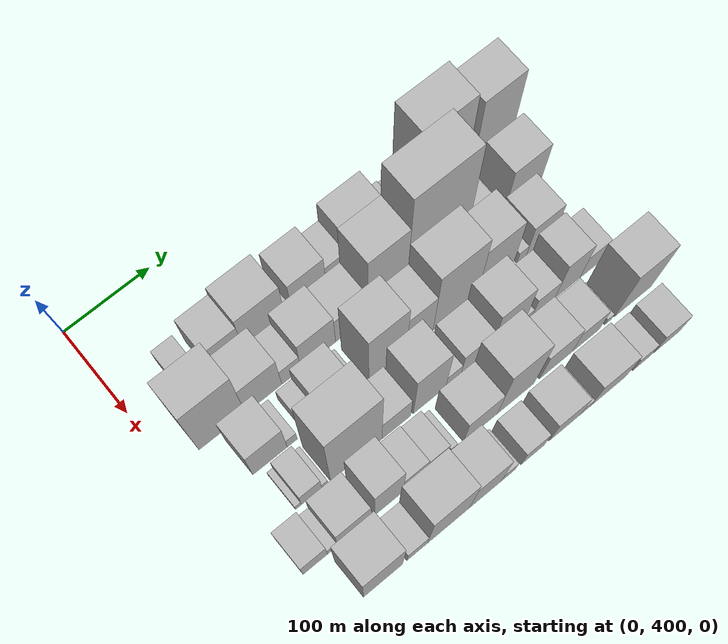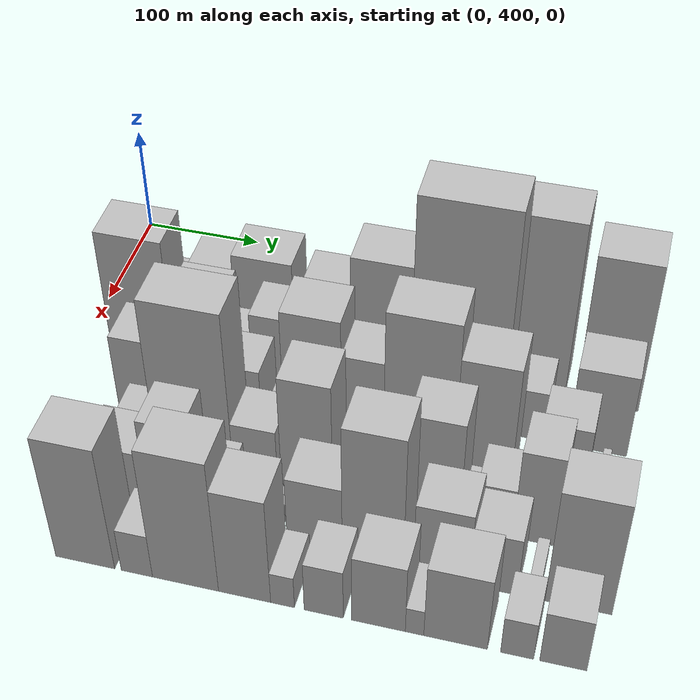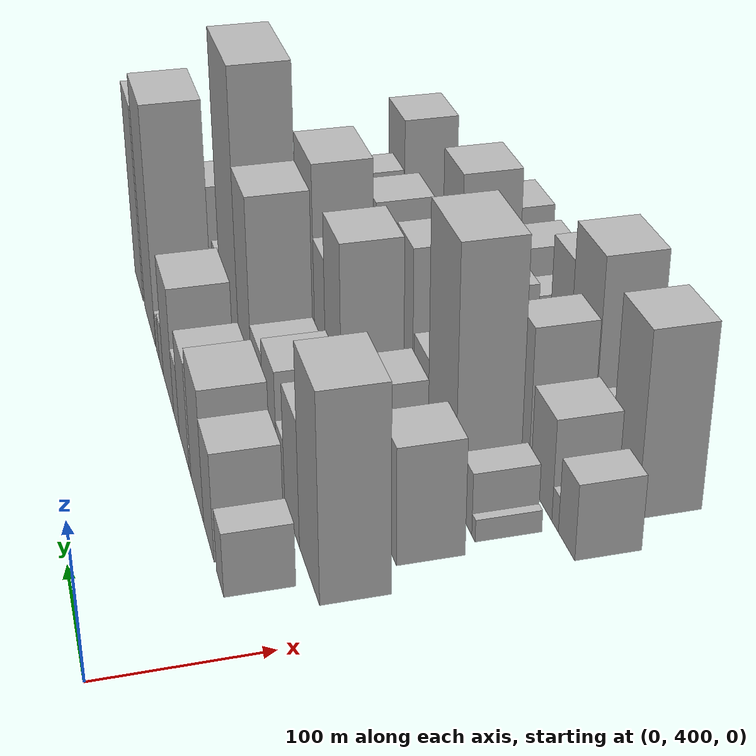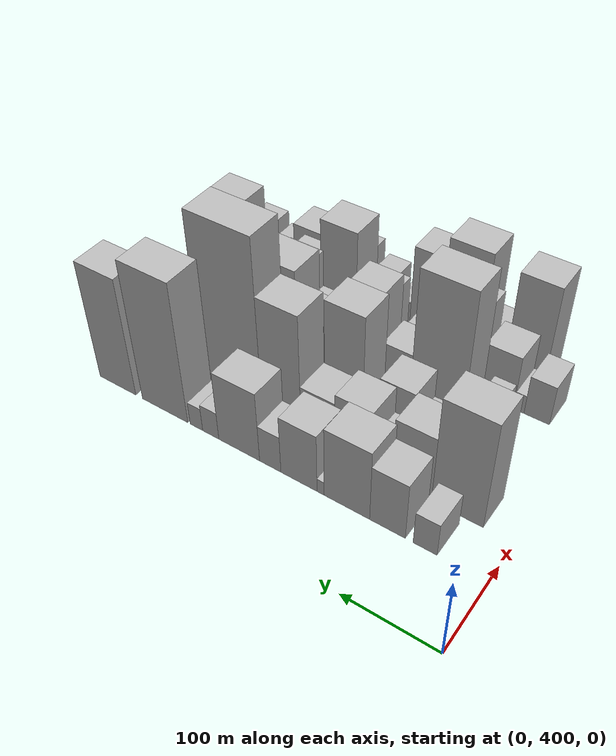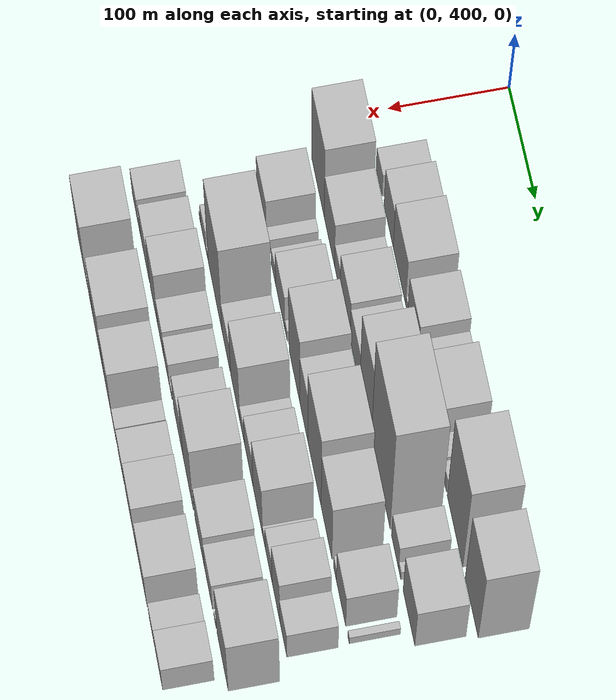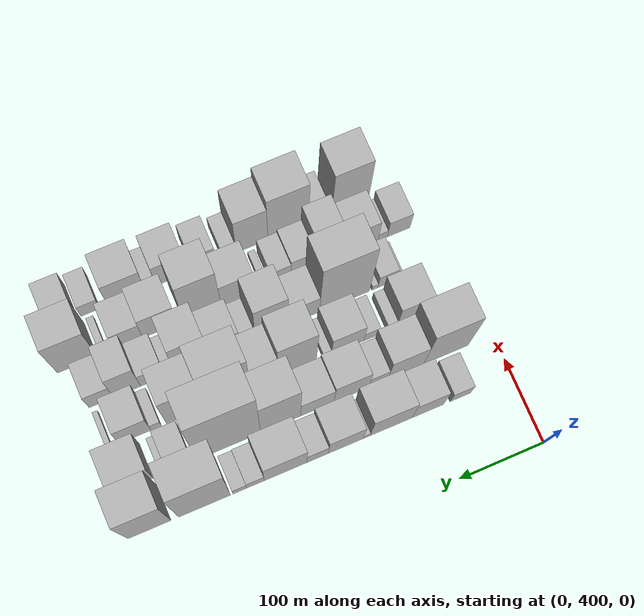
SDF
<sdf version="1.6">
 <world name="default">
  <model name="building_33">
   <static>1</static>
   <pose>100.0000 462.2350 0 0.000000 0.000000 0.000000</pose>
   <link name="link">
    <pose>0 0 21.00 0 0 0</pose>
    <collision name="collision"><geometry><box><size>40.0000 24.2474 42.0000</size></box></geometry></collision>
    <visual name="visual">
     <cast_shadows>0</cast_shadows>
     <geometry><box><size>40.0000 24.2474 42.0000</size></box></geometry>
     <material>
      <script>
       <uri>model://HANNAS_wall/materials/scripts</uri>
       <uri>model://HANNAS_wall/materials/textures</uri>
       <name>vrc/HANNAS_wall</name>
      </script>
     </material>
    </visual>
   </link>
  </model>
  <model name="building_34">
   <static>1</static>
   <pose>100.0000 501.0210 0 0.000000 0.000000 0.000000</pose>
   <link name="link">
    <pose>0 0 36.00 0 0 0</pose>
    <collision name="collision"><geometry><box><size>40.0000 37.3245 72.0000</size></box></geometry></collision>
    <visual name="visual">
     <cast_shadows>0</cast_shadows>
     <geometry><box><size>40.0000 37.3245 72.0000</size></box></geometry>
     <material>
      <script>
       <uri>model://HANNAS_wall/materials/scripts</uri>
       <uri>model://HANNAS_wall/materials/textures</uri>
       <name>vrc/HANNAS_wall</name>
      </script>
     </material>
    </visual>
   </link>
  </model>
  <model name="building_35">
   <static>1</static>
   <pose>100.0000 544.4039 0 0.000000 0.000000 0.000000</pose>
   <link name="link">
    <pose>0 0 45.00 0 0 0</pose>
    <collision name="collision"><geometry><box><size>40.0000 49.4412 90.0000</size></box></geometry></collision>
    <visual name="visual">
     <cast_shadows>0</cast_shadows>
     <geometry><box><size>40.0000 49.4412 90.0000</size></box></geometry>
     <material>
      <script>
       <uri>model://HANNAS_wall/materials/scripts</uri>
       <uri>model://HANNAS_wall/materials/textures</uri>
       <name>vrc/HANNAS_wall</name>
      </script>
     </material>
    </visual>
   </link>
  </model>
  <model name="building_36">
   <static>1</static>
   <pose>100.0000 573.1150 0 0.000000 0.000000 0.000000</pose>
   <link name="link">
    <pose>0 0 9.00 0 0 0</pose>
    <collision name="collision"><geometry><box><size>40.0000 7.9811 18.0000</size></box></geometry></collision>
    <visual name="visual">
     <cast_shadows>0</cast_shadows>
     <geometry><box><size>40.0000 7.9811 18.0000</size></box></geometry>
     <material>
      <script>
       <uri>model://HANNAS_wall/materials/scripts</uri>
       <uri>model://HANNAS_wall/materials/textures</uri>
       <name>vrc/HANNAS_wall</name>
      </script>
     </material>
    </visual>
   </link>
  </model>
  <model name="building_37">
   <static>1</static>
   <pose>100.0000 597.6989 0 0.000000 0.000000 0.000000</pose>
   <link name="link">
    <pose>0 0 37.50 0 0 0</pose>
    <collision name="collision"><geometry><box><size>40.0000 41.1868 75.0000</size></box></geometry></collision>
    <visual name="visual">
     <cast_shadows>0</cast_shadows>
     <geometry><box><size>40.0000 41.1868 75.0000</size></box></geometry>
     <material>
      <script>
       <uri>model://HANNAS_wall/materials/scripts</uri>
       <uri>model://HANNAS_wall/materials/textures</uri>
       <name>vrc/HANNAS_wall</name>
      </script>
     </material>
    </visual>
   </link>
  </model>
  <model name="building_38">
   <static>1</static>
   <pose>100.0000 630.7753 0 0.000000 0.000000 0.000000</pose>
   <link name="link">
    <pose>0 0 24.00 0 0 0</pose>
    <collision name="collision"><geometry><box><size>40.0000 24.9658 48.0000</size></box></geometry></collision>
    <visual name="visual">
     <cast_shadows>0</cast_shadows>
     <geometry><box><size>40.0000 24.9658 48.0000</size></box></geometry>
     <material>
      <script>
       <uri>model://HANNAS_wall/materials/scripts</uri>
       <uri>model://HANNAS_wall/materials/textures</uri>
       <name>vrc/HANNAS_wall</name>
      </script>
     </material>
    </visual>
   </link>
  </model>
  <model name="building_39">
   <static>1</static>
   <pose>100.0000 667.9489 0 0.000000 0.000000 0.000000</pose>
   <link name="link">
    <pose>0 0 45.00 0 0 0</pose>
    <collision name="collision"><geometry><box><size>40.0000 49.3814 90.0000</size></box></geometry></collision>
    <visual name="visual">
     <cast_shadows>0</cast_shadows>
     <geometry><box><size>40.0000 49.3814 90.0000</size></box></geometry>
     <material>
      <script>
       <uri>model://HANNAS_wall/materials/scripts</uri>
       <uri>model://HANNAS_wall/materials/textures</uri>
       <name>vrc/HANNAS_wall</name>
      </script>
     </material>
    </visual>
   </link>
  </model>
  <model name="building_40">
   <static>1</static>
   <pose>100.0000 702.7262 0 0.000000 0.000000 0.000000</pose>
   <link name="link">
    <pose>0 0 18.00 0 0 0</pose>
    <collision name="collision"><geometry><box><size>40.0000 20.1732 36.0000</size></box></geometry></collision>
    <visual name="visual">
     <cast_shadows>0</cast_shadows>
     <geometry><box><size>40.0000 20.1732 36.0000</size></box></geometry>
     <material>
      <script>
       <uri>model://HANNAS_wall/materials/scripts</uri>
       <uri>model://HANNAS_wall/materials/textures</uri>
       <name>vrc/HANNAS_wall</name>
      </script>
     </material>
    </visual>
   </link>
  </model>
  <model name="building_41">
   <static>1</static>
   <pose>100.0000 720.7292 0 0.000000 0.000000 0.000000</pose>
   <link name="link">
    <pose>0 0 15.00 0 0 0</pose>
    <collision name="collision"><geometry><box><size>40.0000 15.8327 30.0000</size></box></geometry></collision>
    <visual name="visual">
     <cast_shadows>0</cast_shadows>
     <geometry><box><size>40.0000 15.8327 30.0000</size></box></geometry>
     <material>
      <script>
       <uri>model://HANNAS_wall/materials/scripts</uri>
       <uri>model://HANNAS_wall/materials/textures</uri>
       <name>vrc/HANNAS_wall</name>
      </script>
     </material>
    </visual>
   </link>
  </model>
  <model name="building_42">
   <static>1</static>
   <pose>100.0000 761.2971 0 0.000000 0.000000 0.000000</pose>
   <link name="link">
    <pose>0 0 88.50 0 0 0</pose>
    <collision name="collision"><geometry><box><size>40.0000 59.3031 177.0000</size></box></geometry></collision>
    <visual name="visual">
     <cast_shadows>0</cast_shadows>
     <geometry><box><size>40.0000 59.3031 177.0000</size></box></geometry>
     <material>
      <script>
       <uri>model://HANNAS_wall/materials/scripts</uri>
       <uri>model://HANNAS_wall/materials/textures</uri>
       <name>vrc/HANNAS_wall</name>
      </script>
     </material>
    </visual>
   </link>
  </model>
  <model name="building_43">
   <static>1</static>
   <pose>100.0000 824.4423 0 0.000000 0.000000 0.000000</pose>
   <link name="link">
    <pose>0 0 75.00 0 0 0</pose>
    <collision name="collision"><geometry><box><size>40.0000 48.9874 150.0000</size></box></geometry></collision>
    <visual name="visual">
     <cast_shadows>0</cast_shadows>
     <geometry><box><size>40.0000 48.9874 150.0000</size></box></geometry>
     <material>
      <script>
       <uri>model://HANNAS_wall/materials/scripts</uri>
       <uri>model://HANNAS_wall/materials/textures</uri>
       <name>vrc/HANNAS_wall</name>
      </script>
     </material>
    </visual>
   </link>
  </model>
  <model name="building_78">
   <static>1</static>
   <pose>149.0000 457.1789 0 0.000000 0.000000 0.000000</pose>
   <link name="link">
    <pose>0 0 67.50 0 0 0</pose>
    <collision name="collision"><geometry><box><size>40.0000 53.3742 135.0000</size></box></geometry></collision>
    <visual name="visual">
     <cast_shadows>0</cast_shadows>
     <geometry><box><size>40.0000 53.3742 135.0000</size></box></geometry>
     <material>
      <script>
       <uri>model://HANNAS_wall/materials/scripts</uri>
       <uri>model://HANNAS_wall/materials/textures</uri>
       <name>vrc/HANNAS_wall</name>
      </script>
     </material>
    </visual>
   </link>
  </model>
  <model name="building_79">
   <static>1</static>
   <pose>149.0000 505.1072 0 0.000000 0.000000 0.000000</pose>
   <link name="link">
    <pose>0 0 42.00 0 0 0</pose>
    <collision name="collision"><geometry><box><size>40.0000 42.4824 84.0000</size></box></geometry></collision>
    <visual name="visual">
     <cast_shadows>0</cast_shadows>
     <geometry><box><size>40.0000 42.4824 84.0000</size></box></geometry>
     <material>
      <script>
       <uri>model://HANNAS_wall/materials/scripts</uri>
       <uri>model://HANNAS_wall/materials/textures</uri>
       <name>vrc/HANNAS_wall</name>
      </script>
     </material>
    </visual>
   </link>
  </model>
  <model name="building_80">
   <static>1</static>
   <pose>149.0000 537.6445 0 0.000000 0.000000 0.000000</pose>
   <link name="link">
    <pose>0 0 22.50 0 0 0</pose>
    <collision name="collision"><geometry><box><size>40.0000 22.5923 45.0000</size></box></geometry></collision>
    <visual name="visual">
     <cast_shadows>0</cast_shadows>
     <geometry><box><size>40.0000 22.5923 45.0000</size></box></geometry>
     <material>
      <script>
       <uri>model://HANNAS_wall/materials/scripts</uri>
       <uri>model://HANNAS_wall/materials/textures</uri>
       <name>vrc/HANNAS_wall</name>
      </script>
     </material>
    </visual>
   </link>
  </model>
  <model name="building_81">
   <static>1</static>
   <pose>149.0000 569.5184 0 0.000000 0.000000 0.000000</pose>
   <link name="link">
    <pose>0 0 39.00 0 0 0</pose>
    <collision name="collision"><geometry><box><size>40.0000 41.1555 78.0000</size></box></geometry></collision>
    <visual name="visual">
     <cast_shadows>0</cast_shadows>
     <geometry><box><size>40.0000 41.1555 78.0000</size></box></geometry>
     <material>
      <script>
       <uri>model://HANNAS_wall/materials/scripts</uri>
       <uri>model://HANNAS_wall/materials/textures</uri>
       <name>vrc/HANNAS_wall</name>
      </script>
     </material>
    </visual>
   </link>
  </model>
  <model name="building_82">
   <static>1</static>
   <pose>149.0000 609.7627 0 0.000000 0.000000 0.000000</pose>
   <link name="link">
    <pose>0 0 33.00 0 0 0</pose>
    <collision name="collision"><geometry><box><size>40.0000 39.3330 66.0000</size></box></geometry></collision>
    <visual name="visual">
     <cast_shadows>0</cast_shadows>
     <geometry><box><size>40.0000 39.3330 66.0000</size></box></geometry>
     <material>
      <script>
       <uri>model://HANNAS_wall/materials/scripts</uri>
       <uri>model://HANNAS_wall/materials/textures</uri>
       <name>vrc/HANNAS_wall</name>
      </script>
     </material>
    </visual>
   </link>
  </model>
  <model name="building_83">
   <static>1</static>
   <pose>149.0000 652.8227 0 0.000000 0.000000 0.000000</pose>
   <link name="link">
    <pose>0 0 76.50 0 0 0</pose>
    <collision name="collision"><geometry><box><size>40.0000 46.7869 153.0000</size></box></geometry></collision>
    <visual name="visual">
     <cast_shadows>0</cast_shadows>
     <geometry><box><size>40.0000 46.7869 153.0000</size></box></geometry>
     <material>
      <script>
       <uri>model://HANNAS_wall/materials/scripts</uri>
       <uri>model://HANNAS_wall/materials/textures</uri>
       <name>vrc/HANNAS_wall</name>
      </script>
     </material>
    </visual>
   </link>
  </model>
  <model name="building_84">
   <static>1</static>
   <pose>149.0000 713.1505 0 0.000000 0.000000 0.000000</pose>
   <link name="link">
    <pose>0 0 109.50 0 0 0</pose>
    <collision name="collision"><geometry><box><size>40.0000 73.8688 219.0000</size></box></geometry></collision>
    <visual name="visual">
     <cast_shadows>0</cast_shadows>
     <geometry><box><size>40.0000 73.8688 219.0000</size></box></geometry>
     <material>
      <script>
       <uri>model://HANNAS_wall/materials/scripts</uri>
       <uri>model://HANNAS_wall/materials/textures</uri>
       <name>vrc/HANNAS_wall</name>
      </script>
     </material>
    </visual>
   </link>
  </model>
  <model name="building_85">
   <static>1</static>
   <pose>149.0000 769.0644 0 0.000000 0.000000 0.000000</pose>
   <link name="link">
    <pose>0 0 25.50 0 0 0</pose>
    <collision name="collision"><geometry><box><size>40.0000 27.9590 51.0000</size></box></geometry></collision>
    <visual name="visual">
     <cast_shadows>0</cast_shadows>
     <geometry><box><size>40.0000 27.9590 51.0000</size></box></geometry>
     <material>
      <script>
       <uri>model://HANNAS_wall/materials/scripts</uri>
       <uri>model://HANNAS_wall/materials/textures</uri>
       <name>vrc/HANNAS_wall</name>
      </script>
     </material>
    </visual>
   </link>
  </model>
  <model name="building_86">
   <static>1</static>
   <pose>149.0000 787.3751 0 0.000000 0.000000 0.000000</pose>
   <link name="link">
    <pose>0 0 9.00 0 0 0</pose>
    <collision name="collision"><geometry><box><size>40.0000 8.6623 18.0000</size></box></geometry></collision>
    <visual name="visual">
     <cast_shadows>0</cast_shadows>
     <geometry><box><size>40.0000 8.6623 18.0000</size></box></geometry>
     <material>
      <script>
       <uri>model://HANNAS_wall/materials/scripts</uri>
       <uri>model://HANNAS_wall/materials/textures</uri>
       <name>vrc/HANNAS_wall</name>
      </script>
     </material>
    </visual>
   </link>
  </model>
  <model name="building_87">
   <static>1</static>
   <pose>149.0000 823.2641 0 0.000000 0.000000 0.000000</pose>
   <link name="link">
    <pose>0 0 42.00 0 0 0</pose>
    <collision name="collision"><geometry><box><size>40.0000 45.1156 84.0000</size></box></geometry></collision>
    <visual name="visual">
     <cast_shadows>0</cast_shadows>
     <geometry><box><size>40.0000 45.1156 84.0000</size></box></geometry>
     <material>
      <script>
       <uri>model://HANNAS_wall/materials/scripts</uri>
       <uri>model://HANNAS_wall/materials/textures</uri>
       <name>vrc/HANNAS_wall</name>
      </script>
     </material>
    </visual>
   </link>
  </model>
  <model name="building_120">
   <static>1</static>
   <pose>198.0000 474.0532 0 0.000000 0.000000 0.000000</pose>
   <link name="link">
    <pose>0 0 39.00 0 0 0</pose>
    <collision name="collision"><geometry><box><size>40.0000 39.5180 78.0000</size></box></geometry></collision>
    <visual name="visual">
     <cast_shadows>0</cast_shadows>
     <geometry><box><size>40.0000 39.5180 78.0000</size></box></geometry>
     <material>
      <script>
       <uri>model://HANNAS_wall/materials/scripts</uri>
       <uri>model://HANNAS_wall/materials/textures</uri>
       <name>vrc/HANNAS_wall</name>
      </script>
     </material>
    </visual>
   </link>
  </model>
  <model name="building_121">
   <static>1</static>
   <pose>198.0000 499.7464 0 0.000000 0.000000 0.000000</pose>
   <link name="link">
    <pose>0 0 13.50 0 0 0</pose>
    <collision name="collision"><geometry><box><size>40.0000 11.8683 27.0000</size></box></geometry></collision>
    <visual name="visual">
     <cast_shadows>0</cast_shadows>
     <geometry><box><size>40.0000 11.8683 27.0000</size></box></geometry>
     <material>
      <script>
       <uri>model://HANNAS_wall/materials/scripts</uri>
       <uri>model://HANNAS_wall/materials/textures</uri>
       <name>vrc/HANNAS_wall</name>
      </script>
     </material>
    </visual>
   </link>
  </model>
  <model name="building_122">
   <static>1</static>
   <pose>198.0000 523.9168 0 0.000000 0.000000 0.000000</pose>
   <link name="link">
    <pose>0 0 16.50 0 0 0</pose>
    <collision name="collision"><geometry><box><size>40.0000 18.4725 33.0000</size></box></geometry></collision>
    <visual name="visual">
     <cast_shadows>0</cast_shadows>
     <geometry><box><size>40.0000 18.4725 33.0000</size></box></geometry>
     <material>
      <script>
       <uri>model://HANNAS_wall/materials/scripts</uri>
       <uri>model://HANNAS_wall/materials/textures</uri>
       <name>vrc/HANNAS_wall</name>
      </script>
     </material>
    </visual>
   </link>
  </model>
  <model name="building_123">
   <static>1</static>
   <pose>198.0000 552.5294 0 0.000000 0.000000 0.000000</pose>
   <link name="link">
    <pose>0 0 34.50 0 0 0</pose>
    <collision name="collision"><geometry><box><size>40.0000 38.7527 69.0000</size></box></geometry></collision>
    <visual name="visual">
     <cast_shadows>0</cast_shadows>
     <geometry><box><size>40.0000 38.7527 69.0000</size></box></geometry>
     <material>
      <script>
       <uri>model://HANNAS_wall/materials/scripts</uri>
       <uri>model://HANNAS_wall/materials/textures</uri>
       <name>vrc/HANNAS_wall</name>
      </script>
     </material>
    </visual>
   </link>
  </model>
  <model name="building_124">
   <static>1</static>
   <pose>198.0000 576.8698 0 0.000000 0.000000 0.000000</pose>
   <link name="link">
    <pose>0 0 10.50 0 0 0</pose>
    <collision name="collision"><geometry><box><size>40.0000 9.9280 21.0000</size></box></geometry></collision>
    <visual name="visual">
     <cast_shadows>0</cast_shadows>
     <geometry><box><size>40.0000 9.9280 21.0000</size></box></geometry>
     <material>
      <script>
       <uri>model://HANNAS_wall/materials/scripts</uri>
       <uri>model://HANNAS_wall/materials/textures</uri>
       <name>vrc/HANNAS_wall</name>
      </script>
     </material>
    </visual>
   </link>
  </model>
  <model name="building_125">
   <static>1</static>
   <pose>198.0000 612.4078 0 0.000000 0.000000 0.000000</pose>
   <link name="link">
    <pose>0 0 67.50 0 0 0</pose>
    <collision name="collision"><geometry><box><size>40.0000 45.1480 135.0000</size></box></geometry></collision>
    <visual name="visual">
     <cast_shadows>0</cast_shadows>
     <geometry><box><size>40.0000 45.1480 135.0000</size></box></geometry>
     <material>
      <script>
       <uri>model://HANNAS_wall/materials/scripts</uri>
       <uri>model://HANNAS_wall/materials/textures</uri>
       <name>vrc/HANNAS_wall</name>
      </script>
     </material>
    </visual>
   </link>
  </model>
  <model name="building_126">
   <static>1</static>
   <pose>198.0000 651.1592 0 0.000000 0.000000 0.000000</pose>
   <link name="link">
    <pose>0 0 51.00 0 0 0</pose>
    <collision name="collision"><geometry><box><size>40.0000 32.3549 102.0000</size></box></geometry></collision>
    <visual name="visual">
     <cast_shadows>0</cast_shadows>
     <geometry><box><size>40.0000 32.3549 102.0000</size></box></geometry>
     <material>
      <script>
       <uri>model://HANNAS_wall/materials/scripts</uri>
       <uri>model://HANNAS_wall/materials/textures</uri>
       <name>vrc/HANNAS_wall</name>
      </script>
     </material>
    </visual>
   </link>
  </model>
  <model name="building_127">
   <static>1</static>
   <pose>198.0000 694.6096 0 0.000000 0.000000 0.000000</pose>
   <link name="link">
    <pose>0 0 76.50 0 0 0</pose>
    <collision name="collision"><geometry><box><size>40.0000 54.5460 153.0000</size></box></geometry></collision>
    <visual name="visual">
     <cast_shadows>0</cast_shadows>
     <geometry><box><size>40.0000 54.5460 153.0000</size></box></geometry>
     <material>
      <script>
       <uri>model://HANNAS_wall/materials/scripts</uri>
       <uri>model://HANNAS_wall/materials/textures</uri>
       <name>vrc/HANNAS_wall</name>
      </script>
     </material>
    </visual>
   </link>
  </model>
  <model name="building_128">
   <static>1</static>
   <pose>198.0000 743.6714 0 0.000000 0.000000 0.000000</pose>
   <link name="link">
    <pose>0 0 60.00 0 0 0</pose>
    <collision name="collision"><geometry><box><size>40.0000 43.5775 120.0000</size></box></geometry></collision>
    <visual name="visual">
     <cast_shadows>0</cast_shadows>
     <geometry><box><size>40.0000 43.5775 120.0000</size></box></geometry>
     <material>
      <script>
       <uri>model://HANNAS_wall/materials/scripts</uri>
       <uri>model://HANNAS_wall/materials/textures</uri>
       <name>vrc/HANNAS_wall</name>
      </script>
     </material>
    </visual>
   </link>
  </model>
  <model name="building_129">
   <static>1</static>
   <pose>198.0000 777.4363 0 0.000000 0.000000 0.000000</pose>
   <link name="link">
    <pose>0 0 13.50 0 0 0</pose>
    <collision name="collision"><geometry><box><size>40.0000 11.9522 27.0000</size></box></geometry></collision>
    <visual name="visual">
     <cast_shadows>0</cast_shadows>
     <geometry><box><size>40.0000 11.9522 27.0000</size></box></geometry>
     <material>
      <script>
       <uri>model://HANNAS_wall/materials/scripts</uri>
       <uri>model://HANNAS_wall/materials/textures</uri>
       <name>vrc/HANNAS_wall</name>
      </script>
     </material>
    </visual>
   </link>
  </model>
  <model name="building_130">
   <static>1</static>
   <pose>198.0000 801.9048 0 0.000000 0.000000 0.000000</pose>
   <link name="link">
    <pose>0 0 36.00 0 0 0</pose>
    <collision name="collision"><geometry><box><size>40.0000 36.9848 72.0000</size></box></geometry></collision>
    <visual name="visual">
     <cast_shadows>0</cast_shadows>
     <geometry><box><size>40.0000 36.9848 72.0000</size></box></geometry>
     <material>
      <script>
       <uri>model://HANNAS_wall/materials/scripts</uri>
       <uri>model://HANNAS_wall/materials/textures</uri>
       <name>vrc/HANNAS_wall</name>
      </script>
     </material>
    </visual>
   </link>
  </model>
  <model name="building_131">
   <static>1</static>
   <pose>198.0000 831.4427 0 0.000000 0.000000 0.000000</pose>
   <link name="link">
    <pose>0 0 7.50 0 0 0</pose>
    <collision name="collision"><geometry><box><size>40.0000 6.0911 15.0000</size></box></geometry></collision>
    <visual name="visual">
     <cast_shadows>0</cast_shadows>
     <geometry><box><size>40.0000 6.0911 15.0000</size></box></geometry>
     <material>
      <script>
       <uri>model://HANNAS_wall/materials/scripts</uri>
       <uri>model://HANNAS_wall/materials/textures</uri>
       <name>vrc/HANNAS_wall</name>
      </script>
     </material>
    </visual>
   </link>
  </model>
  <model name="building_169">
   <static>1</static>
   <pose>247.0000 467.9238 0 0.000000 0.000000 0.000000</pose>
   <link name="link">
    <pose>0 0 7.50 0 0 0</pose>
    <collision name="collision"><geometry><box><size>40.0000 6.6607 15.0000</size></box></geometry></collision>
    <visual name="visual">
     <cast_shadows>0</cast_shadows>
     <geometry><box><size>40.0000 6.6607 15.0000</size></box></geometry>
     <material>
      <script>
       <uri>model://HANNAS_wall/materials/scripts</uri>
       <uri>model://HANNAS_wall/materials/textures</uri>
       <name>vrc/HANNAS_wall</name>
      </script>
     </material>
    </visual>
   </link>
  </model>
  <model name="building_170">
   <static>1</static>
   <pose>247.0000 482.9997 0 0.000000 0.000000 0.000000</pose>
   <link name="link">
    <pose>0 0 21.00 0 0 0</pose>
    <collision name="collision"><geometry><box><size>40.0000 23.4911 42.0000</size></box></geometry></collision>
    <visual name="visual">
     <cast_shadows>0</cast_shadows>
     <geometry><box><size>40.0000 23.4911 42.0000</size></box></geometry>
     <material>
      <script>
       <uri>model://HANNAS_wall/materials/scripts</uri>
       <uri>model://HANNAS_wall/materials/textures</uri>
       <name>vrc/HANNAS_wall</name>
      </script>
     </material>
    </visual>
   </link>
  </model>
  <model name="building_171">
   <static>1</static>
   <pose>247.0000 498.2959 0 0.000000 0.000000 0.000000</pose>
   <link name="link">
    <pose>0 0 7.50 0 0 0</pose>
    <collision name="collision"><geometry><box><size>40.0000 7.1013 15.0000</size></box></geometry></collision>
    <visual name="visual">
     <cast_shadows>0</cast_shadows>
     <geometry><box><size>40.0000 7.1013 15.0000</size></box></geometry>
     <material>
      <script>
       <uri>model://HANNAS_wall/materials/scripts</uri>
       <uri>model://HANNAS_wall/materials/textures</uri>
       <name>vrc/HANNAS_wall</name>
      </script>
     </material>
    </visual>
   </link>
  </model>
  <model name="building_172">
   <static>1</static>
   <pose>247.0000 534.8692 0 0.000000 0.000000 0.000000</pose>
   <link name="link">
    <pose>0 0 85.50 0 0 0</pose>
    <collision name="collision"><geometry><box><size>40.0000 60.0453 171.0000</size></box></geometry></collision>
    <visual name="visual">
     <cast_shadows>0</cast_shadows>
     <geometry><box><size>40.0000 60.0453 171.0000</size></box></geometry>
     <material>
      <script>
       <uri>model://HANNAS_wall/materials/scripts</uri>
       <uri>model://HANNAS_wall/materials/textures</uri>
       <name>vrc/HANNAS_wall</name>
      </script>
     </material>
    </visual>
   </link>
  </model>
  <model name="building_173">
   <static>1</static>
   <pose>247.0000 581.9582 0 0.000000 0.000000 0.000000</pose>
   <link name="link">
    <pose>0 0 31.50 0 0 0</pose>
    <collision name="collision"><geometry><box><size>40.0000 34.1327 63.0000</size></box></geometry></collision>
    <visual name="visual">
     <cast_shadows>0</cast_shadows>
     <geometry><box><size>40.0000 34.1327 63.0000</size></box></geometry>
     <material>
      <script>
       <uri>model://HANNAS_wall/materials/scripts</uri>
       <uri>model://HANNAS_wall/materials/textures</uri>
       <name>vrc/HANNAS_wall</name>
      </script>
     </material>
    </visual>
   </link>
  </model>
  <model name="building_174">
   <static>1</static>
   <pose>247.0000 621.5283 0 0.000000 0.000000 0.000000</pose>
   <link name="link">
    <pose>0 0 60.00 0 0 0</pose>
    <collision name="collision"><geometry><box><size>40.0000 39.0076 120.0000</size></box></geometry></collision>
    <visual name="visual">
     <cast_shadows>0</cast_shadows>
     <geometry><box><size>40.0000 39.0076 120.0000</size></box></geometry>
     <material>
      <script>
       <uri>model://HANNAS_wall/materials/scripts</uri>
       <uri>model://HANNAS_wall/materials/textures</uri>
       <name>vrc/HANNAS_wall</name>
      </script>
     </material>
    </visual>
   </link>
  </model>
  <model name="building_175">
   <static>1</static>
   <pose>247.0000 650.1724 0 0.000000 0.000000 0.000000</pose>
   <link name="link">
    <pose>0 0 18.00 0 0 0</pose>
    <collision name="collision"><geometry><box><size>40.0000 18.2806 36.0000</size></box></geometry></collision>
    <visual name="visual">
     <cast_shadows>0</cast_shadows>
     <geometry><box><size>40.0000 18.2806 36.0000</size></box></geometry>
     <material>
      <script>
       <uri>model://HANNAS_wall/materials/scripts</uri>
       <uri>model://HANNAS_wall/materials/textures</uri>
       <name>vrc/HANNAS_wall</name>
      </script>
     </material>
    </visual>
   </link>
  </model>
  <model name="building_176">
   <static>1</static>
   <pose>247.0000 677.8044 0 0.000000 0.000000 0.000000</pose>
   <link name="link">
    <pose>0 0 31.50 0 0 0</pose>
    <collision name="collision"><geometry><box><size>40.0000 36.9833 63.0000</size></box></geometry></collision>
    <visual name="visual">
     <cast_shadows>0</cast_shadows>
     <geometry><box><size>40.0000 36.9833 63.0000</size></box></geometry>
     <material>
      <script>
       <uri>model://HANNAS_wall/materials/scripts</uri>
       <uri>model://HANNAS_wall/materials/textures</uri>
       <name>vrc/HANNAS_wall</name>
      </script>
     </material>
    </visual>
   </link>
  </model>
  <model name="building_177">
   <static>1</static>
   <pose>247.0000 716.3649 0 0.000000 0.000000 0.000000</pose>
   <link name="link">
    <pose>0 0 54.00 0 0 0</pose>
    <collision name="collision"><geometry><box><size>40.0000 40.1377 108.0000</size></box></geometry></collision>
    <visual name="visual">
     <cast_shadows>0</cast_shadows>
     <geometry><box><size>40.0000 40.1377 108.0000</size></box></geometry>
     <material>
      <script>
       <uri>model://HANNAS_wall/materials/scripts</uri>
       <uri>model://HANNAS_wall/materials/textures</uri>
       <name>vrc/HANNAS_wall</name>
      </script>
     </material>
    </visual>
   </link>
  </model>
  <model name="building_178">
   <static>1</static>
   <pose>247.0000 741.8140 0 0.000000 0.000000 0.000000</pose>
   <link name="link">
    <pose>0 0 12.00 0 0 0</pose>
    <collision name="collision"><geometry><box><size>40.0000 10.7604 24.0000</size></box></geometry></collision>
    <visual name="visual">
     <cast_shadows>0</cast_shadows>
     <geometry><box><size>40.0000 10.7604 24.0000</size></box></geometry>
     <material>
      <script>
       <uri>model://HANNAS_wall/materials/scripts</uri>
       <uri>model://HANNAS_wall/materials/textures</uri>
       <name>vrc/HANNAS_wall</name>
      </script>
     </material>
    </visual>
   </link>
  </model>
  <model name="building_179">
   <static>1</static>
   <pose>247.0000 761.4482 0 0.000000 0.000000 0.000000</pose>
   <link name="link">
    <pose>0 0 25.50 0 0 0</pose>
    <collision name="collision"><geometry><box><size>40.0000 28.5081 51.0000</size></box></geometry></collision>
    <visual name="visual">
     <cast_shadows>0</cast_shadows>
     <geometry><box><size>40.0000 28.5081 51.0000</size></box></geometry>
     <material>
      <script>
       <uri>model://HANNAS_wall/materials/scripts</uri>
       <uri>model://HANNAS_wall/materials/textures</uri>
       <name>vrc/HANNAS_wall</name>
      </script>
     </material>
    </visual>
   </link>
  </model>
  <model name="building_180">
   <static>1</static>
   <pose>247.0000 791.4856 0 0.000000 0.000000 0.000000</pose>
   <link name="link">
    <pose>0 0 46.50 0 0 0</pose>
    <collision name="collision"><geometry><box><size>40.0000 31.5667 93.0000</size></box></geometry></collision>
    <visual name="visual">
     <cast_shadows>0</cast_shadows>
     <geometry><box><size>40.0000 31.5667 93.0000</size></box></geometry>
     <material>
      <script>
       <uri>model://HANNAS_wall/materials/scripts</uri>
       <uri>model://HANNAS_wall/materials/textures</uri>
       <name>vrc/HANNAS_wall</name>
      </script>
     </material>
    </visual>
   </link>
  </model>
  <model name="building_181">
   <static>1</static>
   <pose>247.0000 821.5796 0 0.000000 0.000000 0.000000</pose>
   <link name="link">
    <pose>0 0 28.50 0 0 0</pose>
    <collision name="collision"><geometry><box><size>40.0000 28.6212 57.0000</size></box></geometry></collision>
    <visual name="visual">
     <cast_shadows>0</cast_shadows>
     <geometry><box><size>40.0000 28.6212 57.0000</size></box></geometry>
     <material>
      <script>
       <uri>model://HANNAS_wall/materials/scripts</uri>
       <uri>model://HANNAS_wall/materials/textures</uri>
       <name>vrc/HANNAS_wall</name>
      </script>
     </material>
    </visual>
   </link>
  </model>
  <model name="building_218">
   <static>1</static>
   <pose>296.0000 447.9279 0 0.000000 0.000000 0.000000</pose>
   <link name="link">
    <pose>0 0 25.50 0 0 0</pose>
    <collision name="collision"><geometry><box><size>40.0000 27.6254 51.0000</size></box></geometry></collision>
    <visual name="visual">
     <cast_shadows>0</cast_shadows>
     <geometry><box><size>40.0000 27.6254 51.0000</size></box></geometry>
     <material>
      <script>
       <uri>model://HANNAS_wall/materials/scripts</uri>
       <uri>model://HANNAS_wall/materials/textures</uri>
       <name>vrc/HANNAS_wall</name>
      </script>
     </material>
    </visual>
   </link>
  </model>
  <model name="building_219">
   <static>1</static>
   <pose>296.0000 467.4357 0 0.000000 0.000000 0.000000</pose>
   <link name="link">
    <pose>0 0 12.00 0 0 0</pose>
    <collision name="collision"><geometry><box><size>40.0000 11.3902 24.0000</size></box></geometry></collision>
    <visual name="visual">
     <cast_shadows>0</cast_shadows>
     <geometry><box><size>40.0000 11.3902 24.0000</size></box></geometry>
     <material>
      <script>
       <uri>model://HANNAS_wall/materials/scripts</uri>
       <uri>model://HANNAS_wall/materials/textures</uri>
       <name>vrc/HANNAS_wall</name>
      </script>
     </material>
    </visual>
   </link>
  </model>
  <model name="building_220">
   <static>1</static>
   <pose>296.0000 492.4781 0 0.000000 0.000000 0.000000</pose>
   <link name="link">
    <pose>0 0 34.50 0 0 0</pose>
    <collision name="collision"><geometry><box><size>40.0000 38.6945 69.0000</size></box></geometry></collision>
    <visual name="visual">
     <cast_shadows>0</cast_shadows>
     <geometry><box><size>40.0000 38.6945 69.0000</size></box></geometry>
     <material>
      <script>
       <uri>model://HANNAS_wall/materials/scripts</uri>
       <uri>model://HANNAS_wall/materials/textures</uri>
       <name>vrc/HANNAS_wall</name>
      </script>
     </material>
    </visual>
   </link>
  </model>
  <model name="building_221">
   <static>1</static>
   <pose>296.0000 532.4503 0 0.000000 0.000000 0.000000</pose>
   <link name="link">
    <pose>0 0 52.50 0 0 0</pose>
    <collision name="collision"><geometry><box><size>40.0000 33.2500 105.0000</size></box></geometry></collision>
    <visual name="visual">
     <cast_shadows>0</cast_shadows>
     <geometry><box><size>40.0000 33.2500 105.0000</size></box></geometry>
     <material>
      <script>
       <uri>model://HANNAS_wall/materials/scripts</uri>
       <uri>model://HANNAS_wall/materials/textures</uri>
       <name>vrc/HANNAS_wall</name>
      </script>
     </material>
    </visual>
   </link>
  </model>
  <model name="building_222">
   <static>1</static>
   <pose>296.0000 563.3449 0 0.000000 0.000000 0.000000</pose>
   <link name="link">
    <pose>0 0 28.50 0 0 0</pose>
    <collision name="collision"><geometry><box><size>40.0000 28.5392 57.0000</size></box></geometry></collision>
    <visual name="visual">
     <cast_shadows>0</cast_shadows>
     <geometry><box><size>40.0000 28.5392 57.0000</size></box></geometry>
     <material>
      <script>
       <uri>model://HANNAS_wall/materials/scripts</uri>
       <uri>model://HANNAS_wall/materials/textures</uri>
       <name>vrc/HANNAS_wall</name>
      </script>
     </material>
    </visual>
   </link>
  </model>
  <model name="building_223">
   <static>1</static>
   <pose>296.0000 589.6479 0 0.000000 0.000000 0.000000</pose>
   <link name="link">
    <pose>0 0 24.00 0 0 0</pose>
    <collision name="collision"><geometry><box><size>40.0000 24.0668 48.0000</size></box></geometry></collision>
    <visual name="visual">
     <cast_shadows>0</cast_shadows>
     <geometry><box><size>40.0000 24.0668 48.0000</size></box></geometry>
     <material>
      <script>
       <uri>model://HANNAS_wall/materials/scripts</uri>
       <uri>model://HANNAS_wall/materials/textures</uri>
       <name>vrc/HANNAS_wall</name>
      </script>
     </material>
    </visual>
   </link>
  </model>
  <model name="building_224">
   <static>1</static>
   <pose>296.0000 608.6778 0 0.000000 0.000000 0.000000</pose>
   <link name="link">
    <pose>0 0 9.00 0 0 0</pose>
    <collision name="collision"><geometry><box><size>40.0000 7.9929 18.0000</size></box></geometry></collision>
    <visual name="visual">
     <cast_shadows>0</cast_shadows>
     <geometry><box><size>40.0000 7.9929 18.0000</size></box></geometry>
     <material>
      <script>
       <uri>model://HANNAS_wall/materials/scripts</uri>
       <uri>model://HANNAS_wall/materials/textures</uri>
       <name>vrc/HANNAS_wall</name>
      </script>
     </material>
    </visual>
   </link>
  </model>
  <model name="building_225">
   <static>1</static>
   <pose>296.0000 641.0123 0 0.000000 0.000000 0.000000</pose>
   <link name="link">
    <pose>0 0 37.50 0 0 0</pose>
    <collision name="collision"><geometry><box><size>40.0000 40.6762 75.0000</size></box></geometry></collision>
    <visual name="visual">
     <cast_shadows>0</cast_shadows>
     <geometry><box><size>40.0000 40.6762 75.0000</size></box></geometry>
     <material>
      <script>
       <uri>model://HANNAS_wall/materials/scripts</uri>
       <uri>model://HANNAS_wall/materials/textures</uri>
       <name>vrc/HANNAS_wall</name>
      </script>
     </material>
    </visual>
   </link>
  </model>
  <model name="building_226">
   <static>1</static>
   <pose>296.0000 683.6834 0 0.000000 0.000000 0.000000</pose>
   <link name="link">
    <pose>0 0 69.00 0 0 0</pose>
    <collision name="collision"><geometry><box><size>40.0000 44.6662 138.0000</size></box></geometry></collision>
    <visual name="visual">
     <cast_shadows>0</cast_shadows>
     <geometry><box><size>40.0000 44.6662 138.0000</size></box></geometry>
     <material>
      <script>
       <uri>model://HANNAS_wall/materials/scripts</uri>
       <uri>model://HANNAS_wall/materials/textures</uri>
       <name>vrc/HANNAS_wall</name>
      </script>
     </material>
    </visual>
   </link>
  </model>
  <model name="building_227">
   <static>1</static>
   <pose>296.0000 733.3504 0 0.000000 0.000000 0.000000</pose>
   <link name="link">
    <pose>0 0 37.50 0 0 0</pose>
    <collision name="collision"><geometry><box><size>40.0000 40.6678 75.0000</size></box></geometry></collision>
    <visual name="visual">
     <cast_shadows>0</cast_shadows>
     <geometry><box><size>40.0000 40.6678 75.0000</size></box></geometry>
     <material>
      <script>
       <uri>model://HANNAS_wall/materials/scripts</uri>
       <uri>model://HANNAS_wall/materials/textures</uri>
       <name>vrc/HANNAS_wall</name>
      </script>
     </material>
    </visual>
   </link>
  </model>
  <model name="building_228">
   <static>1</static>
   <pose>296.0000 770.6549 0 0.000000 0.000000 0.000000</pose>
   <link name="link">
    <pose>0 0 30.00 0 0 0</pose>
    <collision name="collision"><geometry><box><size>40.0000 33.9411 60.0000</size></box></geometry></collision>
    <visual name="visual">
     <cast_shadows>0</cast_shadows>
     <geometry><box><size>40.0000 33.9411 60.0000</size></box></geometry>
     <material>
      <script>
       <uri>model://HANNAS_wall/materials/scripts</uri>
       <uri>model://HANNAS_wall/materials/textures</uri>
       <name>vrc/HANNAS_wall</name>
      </script>
     </material>
    </visual>
   </link>
  </model>
  <model name="building_229">
   <static>1</static>
   <pose>296.0000 798.8704 0 0.000000 0.000000 0.000000</pose>
   <link name="link">
    <pose>0 0 9.00 0 0 0</pose>
    <collision name="collision"><geometry><box><size>40.0000 8.4899 18.0000</size></box></geometry></collision>
    <visual name="visual">
     <cast_shadows>0</cast_shadows>
     <geometry><box><size>40.0000 8.4899 18.0000</size></box></geometry>
     <material>
      <script>
       <uri>model://HANNAS_wall/materials/scripts</uri>
       <uri>model://HANNAS_wall/materials/textures</uri>
       <name>vrc/HANNAS_wall</name>
      </script>
     </material>
    </visual>
   </link>
  </model>
  <model name="building_230">
   <static>1</static>
   <pose>296.0000 830.4220 0 0.000000 0.000000 0.000000</pose>
   <link name="link">
    <pose>0 0 58.50 0 0 0</pose>
    <collision name="collision"><geometry><box><size>40.0000 46.6134 117.0000</size></box></geometry></collision>
    <visual name="visual">
     <cast_shadows>0</cast_shadows>
     <geometry><box><size>40.0000 46.6134 117.0000</size></box></geometry>
     <material>
      <script>
       <uri>model://HANNAS_wall/materials/scripts</uri>
       <uri>model://HANNAS_wall/materials/textures</uri>
       <name>vrc/HANNAS_wall</name>
      </script>
     </material>
    </visual>
   </link>
  </model>
  <model name="building_270">
   <static>1</static>
   <pose>345.0000 485.1893 0 0.000000 0.000000 0.000000</pose>
   <link name="link">
    <pose>0 0 63.00 0 0 0</pose>
    <collision name="collision"><geometry><box><size>40.0000 44.7342 126.0000</size></box></geometry></collision>
    <visual name="visual">
     <cast_shadows>0</cast_shadows>
     <geometry><box><size>40.0000 44.7342 126.0000</size></box></geometry>
     <material>
      <script>
       <uri>model://HANNAS_wall/materials/scripts</uri>
       <uri>model://HANNAS_wall/materials/textures</uri>
       <name>vrc/HANNAS_wall</name>
      </script>
     </material>
    </visual>
   </link>
  </model>
  <model name="building_271">
   <static>1</static>
   <pose>345.0000 524.2781 0 0.000000 0.000000 0.000000</pose>
   <link name="link">
    <pose>0 0 22.50 0 0 0</pose>
    <collision name="collision"><geometry><box><size>40.0000 23.4435 45.0000</size></box></geometry></collision>
    <visual name="visual">
     <cast_shadows>0</cast_shadows>
     <geometry><box><size>40.0000 23.4435 45.0000</size></box></geometry>
     <material>
      <script>
       <uri>model://HANNAS_wall/materials/scripts</uri>
       <uri>model://HANNAS_wall/materials/textures</uri>
       <name>vrc/HANNAS_wall</name>
      </script>
     </material>
    </visual>
   </link>
  </model>
  <model name="building_272">
   <static>1</static>
   <pose>345.0000 560.4594 0 0.000000 0.000000 0.000000</pose>
   <link name="link">
    <pose>0 0 67.50 0 0 0</pose>
    <collision name="collision"><geometry><box><size>40.0000 48.9190 135.0000</size></box></geometry></collision>
    <visual name="visual">
     <cast_shadows>0</cast_shadows>
     <geometry><box><size>40.0000 48.9190 135.0000</size></box></geometry>
     <material>
      <script>
       <uri>model://HANNAS_wall/materials/scripts</uri>
       <uri>model://HANNAS_wall/materials/textures</uri>
       <name>vrc/HANNAS_wall</name>
      </script>
     </material>
    </visual>
   </link>
  </model>
  <model name="building_273">
   <static>1</static>
   <pose>345.0000 603.9427 0 0.000000 0.000000 0.000000</pose>
   <link name="link">
    <pose>0 0 54.00 0 0 0</pose>
    <collision name="collision"><geometry><box><size>40.0000 38.0476 108.0000</size></box></geometry></collision>
    <visual name="visual">
     <cast_shadows>0</cast_shadows>
     <geometry><box><size>40.0000 38.0476 108.0000</size></box></geometry>
     <material>
      <script>
       <uri>model://HANNAS_wall/materials/scripts</uri>
       <uri>model://HANNAS_wall/materials/textures</uri>
       <name>vrc/HANNAS_wall</name>
      </script>
     </material>
    </visual>
   </link>
  </model>
  <model name="building_274">
   <static>1</static>
   <pose>345.0000 631.5388 0 0.000000 0.000000 0.000000</pose>
   <link name="link">
    <pose>0 0 16.50 0 0 0</pose>
    <collision name="collision"><geometry><box><size>40.0000 17.1445 33.0000</size></box></geometry></collision>
    <visual name="visual">
     <cast_shadows>0</cast_shadows>
     <geometry><box><size>40.0000 17.1445 33.0000</size></box></geometry>
     <material>
      <script>
       <uri>model://HANNAS_wall/materials/scripts</uri>
       <uri>model://HANNAS_wall/materials/textures</uri>
       <name>vrc/HANNAS_wall</name>
      </script>
     </material>
    </visual>
   </link>
  </model>
  <model name="building_275">
   <static>1</static>
   <pose>345.0000 661.0870 0 0.000000 0.000000 0.000000</pose>
   <link name="link">
    <pose>0 0 25.50 0 0 0</pose>
    <collision name="collision"><geometry><box><size>40.0000 27.9521 51.0000</size></box></geometry></collision>
    <visual name="visual">
     <cast_shadows>0</cast_shadows>
     <geometry><box><size>40.0000 27.9521 51.0000</size></box></geometry>
     <material>
      <script>
       <uri>model://HANNAS_wall/materials/scripts</uri>
       <uri>model://HANNAS_wall/materials/textures</uri>
       <name>vrc/HANNAS_wall</name>
      </script>
     </material>
    </visual>
   </link>
  </model>
  <model name="building_276">
   <static>1</static>
   <pose>345.0000 699.9687 0 0.000000 0.000000 0.000000</pose>
   <link name="link">
    <pose>0 0 34.50 0 0 0</pose>
    <collision name="collision"><geometry><box><size>40.0000 37.8112 69.0000</size></box></geometry></collision>
    <visual name="visual">
     <cast_shadows>0</cast_shadows>
     <geometry><box><size>40.0000 37.8112 69.0000</size></box></geometry>
     <material>
      <script>
       <uri>model://HANNAS_wall/materials/scripts</uri>
       <uri>model://HANNAS_wall/materials/textures</uri>
       <name>vrc/HANNAS_wall</name>
      </script>
     </material>
    </visual>
   </link>
  </model>
  <model name="building_277">
   <static>1</static>
   <pose>345.0000 725.3372 0 0.000000 0.000000 0.000000</pose>
   <link name="link">
    <pose>0 0 13.50 0 0 0</pose>
    <collision name="collision"><geometry><box><size>40.0000 12.9260 27.0000</size></box></geometry></collision>
    <visual name="visual">
     <cast_shadows>0</cast_shadows>
     <geometry><box><size>40.0000 12.9260 27.0000</size></box></geometry>
     <material>
      <script>
       <uri>model://HANNAS_wall/materials/scripts</uri>
       <uri>model://HANNAS_wall/materials/textures</uri>
       <name>vrc/HANNAS_wall</name>
      </script>
     </material>
    </visual>
   </link>
  </model>
  <model name="building_278">
   <static>1</static>
   <pose>345.0000 753.8103 0 0.000000 0.000000 0.000000</pose>
   <link name="link">
    <pose>0 0 37.50 0 0 0</pose>
    <collision name="collision"><geometry><box><size>40.0000 44.0200 75.0000</size></box></geometry></collision>
    <visual name="visual">
     <cast_shadows>0</cast_shadows>
     <geometry><box><size>40.0000 44.0200 75.0000</size></box></geometry>
     <material>
      <script>
       <uri>model://HANNAS_wall/materials/scripts</uri>
       <uri>model://HANNAS_wall/materials/textures</uri>
       <name>vrc/HANNAS_wall</name>
      </script>
     </material>
    </visual>
   </link>
  </model>
  <model name="building_279">
   <static>1</static>
   <pose>345.0000 796.1202 0 0.000000 0.000000 0.000000</pose>
   <link name="link">
    <pose>0 0 19.50 0 0 0</pose>
    <collision name="collision"><geometry><box><size>40.0000 22.5999 39.0000</size></box></geometry></collision>
    <visual name="visual">
     <cast_shadows>0</cast_shadows>
     <geometry><box><size>40.0000 22.5999 39.0000</size></box></geometry>
     <material>
      <script>
       <uri>model://HANNAS_wall/materials/scripts</uri>
       <uri>model://HANNAS_wall/materials/textures</uri>
       <name>vrc/HANNAS_wall</name>
      </script>
     </material>
    </visual>
   </link>
  </model>
  <model name="building_280">
   <static>1</static>
   <pose>345.0000 827.3691 0 0.000000 0.000000 0.000000</pose>
   <link name="link">
    <pose>0 0 27.00 0 0 0</pose>
    <collision name="collision"><geometry><box><size>40.0000 31.8979 54.0000</size></box></geometry></collision>
    <visual name="visual">
     <cast_shadows>0</cast_shadows>
     <geometry><box><size>40.0000 31.8979 54.0000</size></box></geometry>
     <material>
      <script>
       <uri>model://HANNAS_wall/materials/scripts</uri>
       <uri>model://HANNAS_wall/materials/textures</uri>
       <name>vrc/HANNAS_wall</name>
      </script>
     </material>
    </visual>
   </link>
  </model>
 </world>
</sdf>
